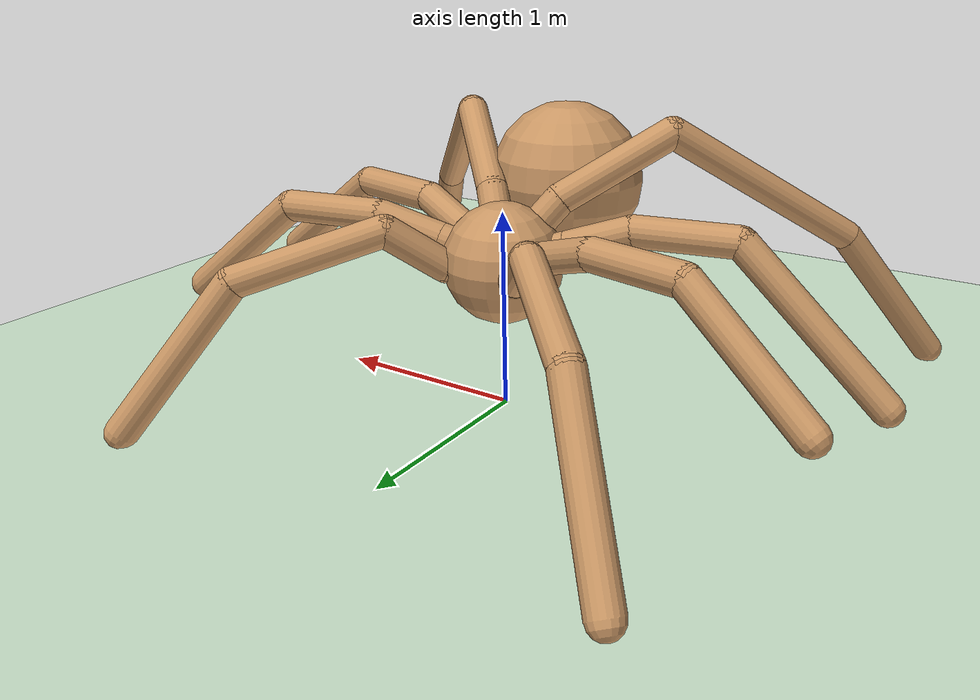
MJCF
<mujoco model="spider">
  <compiler angle="degree" coordinate="local" inertiafromgeom="true"/>
  <option integrator="RK4" timestep="0.01"/>
  <custom>
    <numeric data="0.0 0.0 0.55 1.0 0.0 0.0 0.0 0.0 1.0 0.0 -1.0 0.0 -1.0 0.0 1.0" name="init_qpos"/>
  </custom>
  <default>
    <joint armature="1" damping="1" limited="true"/>
    <geom conaffinity="0" condim="3" density="5.0" friction="3 1.5 1.5" margin="0.01" rgba="0.8 0.6 0.4 1"/>
  </default>
  <asset>
    <texture builtin="gradient" height="50" rgb1="1 1 1" rgb2="0 0 0" type="skybox" width="50"/>
    <texture builtin="flat" height="1278" mark="cross" markrgb="1 1 1" name="texgeom" random="0.01" rgb1="0.8 0.6 0.4" rgb2="0.8 0.6 0.4" type="cube" width="127"/>
    <texture builtin="checker" height="50" name="texplane" rgb1="0 0 0" rgb2="0.8 0.8 0.8" type="2d" width="50"/>
    <material name="MatPlane" reflectance="0.5" shininess="1" specular="1" texrepeat="60 60" texture="texplane"/>
    <material name="geom" texture="texgeom" texuniform="true"/>
  </asset>

  <worldbody>
    <light cutoff="50" diffuse="1 1 1" dir="-0 0 -1.3" directional="true" exponent="1" pos="0 0 1.3" specular=".1 .1 .1"/>
    <geom conaffinity="1" condim="3" material="MatPlane" name="floor" pos="0 0 0" rgba="0.8 0.9 0.8 1" size="40 40 40" type="plane"/>

    <body name="torso" pos="0 0 0.75">
      <camera name="track" mode="trackcom" pos="0 -3 0.3" xyaxes="5 0 0 0 0 -1"/>
        <site name="torso_site"/>
      <geom name="torso_geom" pos="0 0 0" size="0.3" type="sphere"/>
      <joint armature="0" damping="0" limited="false" margin="0.01" name="root" pos="0 0 0" type="free"/>

    <body name="butt" pos="0.0 -0.6 0.3">
        <geom name="butt_geom" pos="0 0 0" size="0.4" type="sphere"/>
    </body>

    <body name="front_left_leg" pos="0 0 0">
        <geom fromto="0.0 0.0 0.0 0.2 0.2 0.0" name="aux_1_geom" size="0.08" type="capsule"/>

        <body name="aux_1" pos="0.2 0.2 0.0">
          <joint axis="0 0 1" name="hip_1" pos="0.0 0.0 0.0" range="-30 40" type="hinge"/>
          <geom fromto="0.0 0.0 0.0 0.2 0.2 0.2" name="left_leg_geom" size="0.08" type="capsule"/>

          <body pos="0.2 0.2 0.2">
            <joint axis="-1 1 0" name="ankle_1" pos="0.0 0.0 0.0" range="-30 70" type="hinge"/>
            <geom fromto="0.0 0.0 0.0 0.5 0.5 -0.2" name="left_ankle_geom" size="0.08" type="capsule"/>

            <body name="front_left_end" pos="0.5 0.5 -0.2">
              <joint axis="-1 1 0" name="ankle_1b" pos="0.0 0.0 0.0" range="-30 70" type="hinge"/>
              <geom fromto="0.0 0.0 0.0 0.4 0.4 -0.7" name="left_ankle_b_geom" size="0.08" type="capsule"/>
            </body>

          </body>
        </body>
    </body>

    <body name="front_right_leg" pos="0 0 0">
        <geom fromto="0.0 0.0 0.0 -0.2 0.2 0.0" name="aux_2_geom" size="0.08" type="capsule"/>

        <body name="aux_2" pos="-0.2 0.2 0">
          <joint axis="0 0 1" name="hip_2" pos="0.0 0.0 0.0" range="-40 30" type="hinge"/>
          <geom fromto="0.0 0.0 0.0 -0.2 0.2 0.2" name="right_leg_geom" size="0.08" type="capsule"/>

          <body pos="-0.2 0.2 0.2">
            <joint axis="1 1 0" name="ankle_2" pos="0.0 0.0 0.0" range="-70 30" type="hinge"/>
            <geom fromto="0.0 0.0 0.0 -0.5 0.5 -0.2" name="right_ankle_geom" size="0.08" type="capsule"/>

            <body name="front_right_end" pos="-0.5 0.5 -0.2">
              <joint axis="1 1 0" name="ankle_2b" pos="0.0 0.0 0.0" range="-70 30" type="hinge"/>
              <geom fromto="0.0 0.0 0.0 -0.4 0.4 -0.7" name="right_ankle_b_geom" size="0.08" type="capsule"/>
            </body>
          </body>
        </body>
      </body>

    <body name="mid_back_left_leg" pos="0 0 0">
        <geom fromto="0.0 0.0 0.0 0.3 -0.1 0.1" name="nub2" size="0.08" type="capsule"/>

        <body name="aux_8" pos="0.3 -0.1 0.1">
          <joint axis="0 0 1" name="hip_8" pos="0.0 0.0 0.0" range="-50 50" type="hinge"/>
          <geom fromto="0.0 0.0 0.0 0.3 -0.1 0.1" name="mid_back_left_leg_geom" size="0.08" type="capsule"/>

          <body pos="0.3 -0.1 0.1">
            <joint axis="0 -1 0" name="ankle_8" pos="0.0 0.0 0.0" range="-70 30" type="hinge"/>
            <geom fromto="0.0 0.0 0.0 0.5 -0.1 0.0" name="mid_back_left_ankle_geom" size="0.08" type="capsule"/>

            <body name="mid_back_left_end" pos="0.5 -0.1 0.0">
                <joint axis="0 -1 0" name="ankle_8b" pos="0.0 0.0 0.0" range="-70 30" type="hinge"/>
                <geom fromto="0.0 0.0 0.0 0.7 -0.1 -0.5" name="mid_back_left_ankle_b_geom" size="0.08" type="capsule"/>
            </body>
          </body>
        </body>
    </body>

    <body name="mid_back_right_leg" pos="0 0 0">
        <geom fromto="0.0 0.0 0.0 -0.3 -0.1 0.1" name="nub4" size="0.08" type="capsule"/>

        <body name="aux_7" pos="-0.3 -0.1 0.1">
          <joint axis="0 0 1" name="hip_7" pos="0.0 0.0 0.0" range="-50 50" type="hinge"/>
          <geom fromto="0.0 0.0 0.0 -0.3 -0.1 0.1" name="mid_back_right_leg_geom" size="0.08" type="capsule"/>

          <body pos="-0.3 -0.1 0.1">
            <joint axis="0 1 0" name="ankle_7" pos="0.0 0.0 0.0" range="-30 70" type="hinge"/>
            <geom fromto="0.0 0.0 0.0 -0.5 -0.1 0.0" name="mid_back_right_ankle_geom" size="0.08" type="capsule"/>

            <body name="mid_back_right_end" pos="-0.5 -0.1 0.0">
                <joint axis="0 1 0" name="ankle_7b" pos="0.0 0.0 0.0" range="-30 70" type="hinge"/>
                <geom fromto="0.0 0.0 0.0 -0.7 -0.1 -0.7" name="mid_back_right_ankle_b_geom" size="0.08" type="capsule"/>
            </body>
          </body>
        </body>
    </body>

    <body name="mid_front_left_leg" pos="0 0 0">
        <geom fromto="0.0 0.0 0.0 0.3 0.1 0.1" name="nub1" size="0.08" type="capsule"/>

        <body name="aux_5" pos="0.3 0.1 0.1">
          <joint axis="0 0 1" name="hip_5" pos="0.0 0.0 0.0" range="-50 50" type="hinge"/>
          <geom fromto="0.0 0.0 0.0 0.3 0.1 0.1" name="mid_front_left_leg_geom" size="0.08" type="capsule"/>

          <body pos="0.3 0.1 0.1">
            <joint axis="0 -1 0" name="ankle_5" pos="0.0 0.0 0.0" range="-70 30" type="hinge"/>
            <geom fromto="0.0 0.0 0.0 0.5 0.1 0.0" name="mid_front_left_ankle_geom" size="0.08" type="capsule"/>

            <body name="mid_front_left_end" pos="0.5 0.1 0.0">
                <joint axis="0 -1 0" name="ankle_5b" pos="0.0 0.0 0.0" range="-70 30" type="hinge"/>
                <geom fromto="0.0 0.0 0.0 0.6 0.1 -0.5" name="mid_front_left_ankle_b_geom" size="0.08" type="capsule"/>
            </body>
          </body>
        </body>
    </body>

    <body name="mid_front_right_leg" pos="0 0 0">
        <geom fromto="0.0 0.0 0.0 -0.3 0.1 0.1" name="nub3" size="0.08" type="capsule"/>

        <body name="aux_6" pos="-0.3 0.1 0.1">
          <joint axis="0 0 1" name="hip_6" pos="0.0 0.0 0.0" range="-50 50" type="hinge"/>
          <geom fromto="0.0 0.0 0.0 -0.3 0.1 0.1" name="mid_front_right_leg_geom" size="0.08" type="capsule"/>

          <body pos="-0.3 0.1 0.1">
            <joint axis="0 1 0" name="ankle_6" pos="0.0 0.0 0.0" range="-70 30" type="hinge"/>
            <geom fromto="0.0 0.0 0.0 -0.5 0.1 0.0" name="mid_front_right_ankle_geom" size="0.08" type="capsule"/>

            <body name="mid_front_right_end" pos="-0.5 0.1 0.0">
                <joint axis="0 1 0" name="ankle_6b" pos="0.0 0.0 0.0" range="-70 30" type="hinge"/>
                <geom fromto="0.0 0.0 0.0 -0.6 0.1 -0.5" name="mid_front_right_ankle_b_geom" size="0.08" type="capsule"/>
            </body>
          </body>
        </body>
    </body>

    <body name="left_back_leg" pos="0 0 0">
        <geom fromto="0.0 0.0 0.0 -0.2 -0.2 0.3" name="aux_3_geom" size="0.08" type="capsule"/>

        <body name="aux_3" pos="-0.2 -0.2 0.3">
          <joint axis="0 0 1" name="hip_3" pos="0.0 0.0 0.0" range="-50 30" type="hinge"/>
          <geom fromto="0.0 0.0 0.0 -0.4 -0.4 0.3" name="back_leg_geom" size="0.08" type="capsule"/>

          <body pos="-0.4 -0.4 0.3">
            <joint axis="-1 1 0" name="ankle_3" pos="0.0 0.0 0.0" range="-70 30" type="hinge"/>
            <geom fromto="0.0 0.0 0.0 -0.7 -0.7 -0.6" name="third_ankle_geom" size="0.08" type="capsule"/>

            <body  name="left_back_end" pos="-0.7 -0.7 -0.6">
              <joint axis="-1 1 0" name="ankle_3b" pos="0.0 0.0 0.0" range="-70 30" type="hinge"/>
              <geom fromto="0.0 0.0 0.0 -0.4 -0.4 -.7" name="third_ankle_b_geom" size="0.08" type="capsule"/>
            </body>
          </body>
        </body>
      </body>

      <body name="right_back_leg" pos="0 0 0">
        <geom fromto="0.0 0.0 0.0 0.2 -0.2 0.3" name="aux_4_geom" size="0.08" type="capsule"/>

        <body name="aux_4" pos="0.2 -0.2 0.3">
          <joint axis="0 0 1" name="hip_4" pos="0.0 0.0 0.0" range="-50 30" type="hinge"/>
          <geom fromto="0.0 0.0 0.0 0.4 -0.4 0.3" name="rightback_leg_geom" size="0.08" type="capsule"/>

          <body pos="0.4 -0.4 0.3">
            <joint axis="1 1 0" name="ankle_4" pos="0.0 0.0 0.0" range="-30 70" type="hinge"/>
            <geom fromto="0.0 0.0 0.0 0.7 -0.7 -0.6" name="fourth_ankle_geom" size="0.08" type="capsule"/>

            <body name="right_back_end" pos="0.7 -0.7 -0.6">
              <joint axis="1 1 0" name="ankle_4b" pos="0.0 0.0 0.0" range="-30 70" type="hinge"/>
              <geom fromto="0.0 0.0 0.0 0.4 -0.4 -0.7" name="fourth_ankle_b_geom" size="0.08" type="capsule"/>
            </body>
          </body>
        </body>
      </body>
    </body>

  </worldbody>

    <sensor>
        <accelerometer name="accelerometer" site="torso_site"/>
        <gyro name="gyro" site="torso_site"/>
    </sensor>

  <actuator>
    <motor ctrllimited="true" ctrlrange="-1.0 1.0" joint="hip_4" gear="50"/>
    <motor ctrllimited="true" ctrlrange="-1.0 1.0" joint="ankle_4" gear="50"/>
    <motor ctrllimited="true" ctrlrange="-1.0 1.0" joint="ankle_4b" gear="50"/>
    <motor ctrllimited="true" ctrlrange="-1.0 1.0" joint="hip_1" gear="50"/>
    <motor ctrllimited="true" ctrlrange="-1.0 1.0" joint="ankle_1" gear="50"/>
    <motor ctrllimited="true" ctrlrange="-1.0 1.0" joint="ankle_1b" gear="50"/>
    <motor ctrllimited="true" ctrlrange="-1.0 1.0" joint="hip_2" gear="50"/>
    <motor ctrllimited="true" ctrlrange="-1.0 1.0" joint="ankle_2" gear="50"/>
    <motor ctrllimited="true" ctrlrange="-1.0 1.0" joint="ankle_2b" gear="50"/>
    <motor ctrllimited="true" ctrlrange="-1.0 1.0" joint="hip_3" gear="50"/>
    <motor ctrllimited="true" ctrlrange="-1.0 1.0" joint="ankle_3" gear="50"/>
    <motor ctrllimited="true" ctrlrange="-1.0 1.0" joint="ankle_3b" gear="50"/>
    <motor ctrllimited="true" ctrlrange="-1.0 1.0" joint="hip_5" gear="50"/>
    <motor ctrllimited="true" ctrlrange="-1.0 1.0" joint="ankle_5" gear="50"/>
    <motor ctrllimited="true" ctrlrange="-1.0 1.0" joint="ankle_5b" gear="50"/>
    <motor ctrllimited="true" ctrlrange="-1.0 1.0" joint="hip_6" gear="50"/>
    <motor ctrllimited="true" ctrlrange="-1.0 1.0" joint="ankle_6" gear="50"/>
    <motor ctrllimited="true" ctrlrange="-1.0 1.0" joint="ankle_6b" gear="50"/>
    <motor ctrllimited="true" ctrlrange="-1.0 1.0" joint="hip_7" gear="50"/>
    <motor ctrllimited="true" ctrlrange="-1.0 1.0" joint="ankle_7" gear="50"/>
    <motor ctrllimited="true" ctrlrange="-1.0 1.0" joint="ankle_7b" gear="50"/>
    <motor ctrllimited="true" ctrlrange="-1.0 1.0" joint="hip_8" gear="50"/>
    <motor ctrllimited="true" ctrlrange="-1.0 1.0" joint="ankle_8" gear="50"/>
    <motor ctrllimited="true" ctrlrange="-1.0 1.0" joint="ankle_8b" gear="50"/>

  </actuator>
</mujoco>
